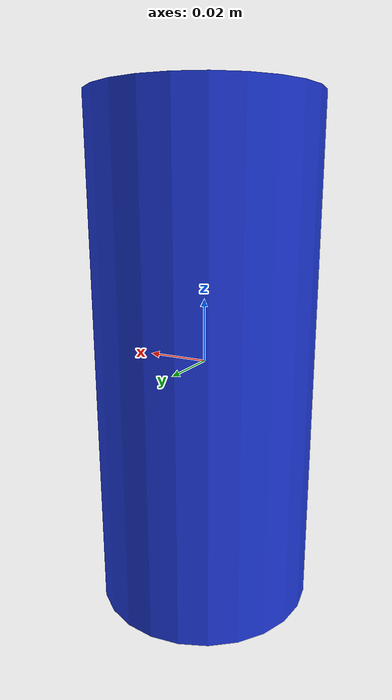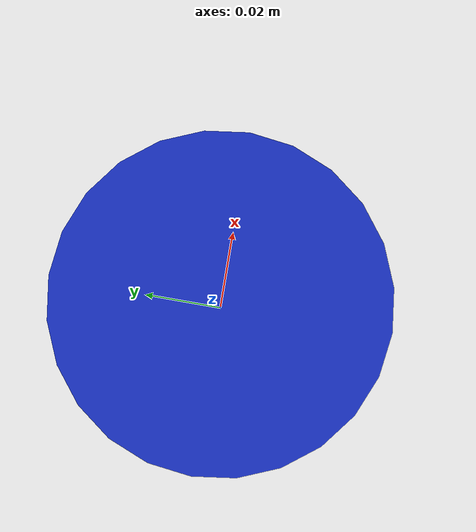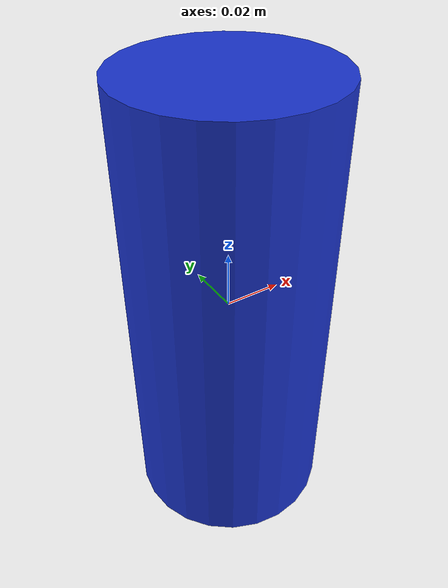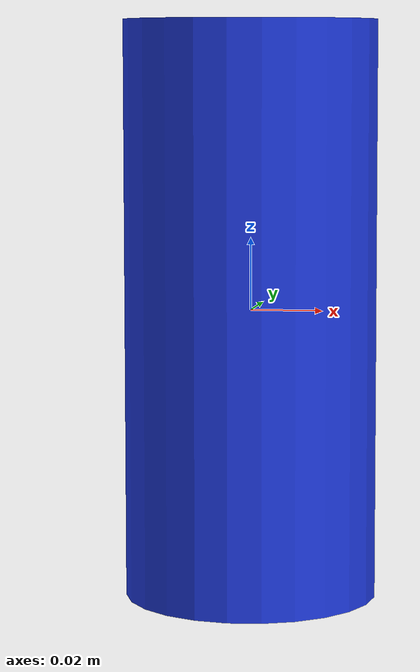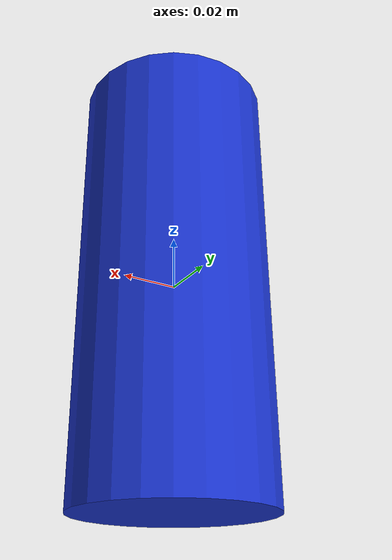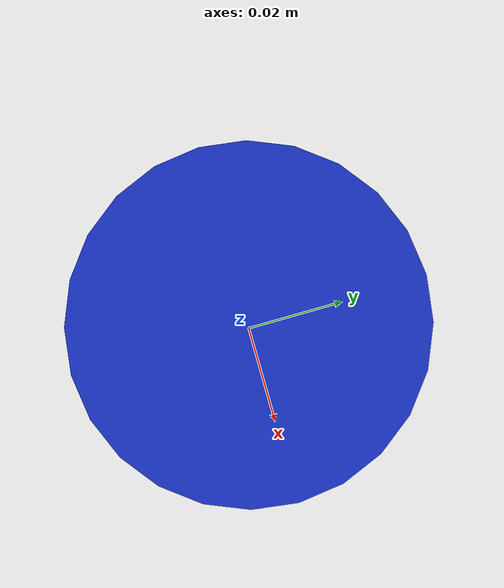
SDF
<?xml version="1.0"?>
<sdf version="1.6">
  <!-- 试剂瓶(可抓取):蓝色圆柱瓶,直径 0.07 < 夹爪开度,动态模型,立于试剂架格内。 -->
  <model name="reagent_bottle">
    <link name="link">
      <inertial>
        <mass>0.05</mass>
        <inertia>
          <ixx>1.22e-4</ixx><ixy>0</ixy><ixz>0</ixz>
          <iyy>1.22e-4</iyy><iyz>0</iyz><izz>3.06e-5</izz>
        </inertia>
      </inertial>
      <collision name="collision">
        <geometry>
          <cylinder>
            <radius>0.035</radius>
            <length>0.16</length>
          </cylinder>
        </geometry>
        <surface>
          <friction><ode><mu>1.0</mu><mu2>1.0</mu2></ode></friction>
          <contact>
            <ode>
              <kp>1e6</kp>
              <kd>1.0</kd>
              <min_depth>0.001</min_depth>
              <max_vel>0.01</max_vel>
            </ode>
          </contact>
        </surface>
      </collision>
      <visual name="visual">
        <geometry>
          <cylinder>
            <radius>0.035</radius>
            <length>0.16</length>
          </cylinder>
        </geometry>
        <material>
          <ambient>0.1 0.2 0.8 1</ambient>
          <diffuse>0.1 0.2 0.8 1</diffuse>
          <specular>0.2 0.2 0.2 1</specular>
          <shininess>24</shininess>
        </material>
      </visual>
    </link>
  </model>
</sdf>
